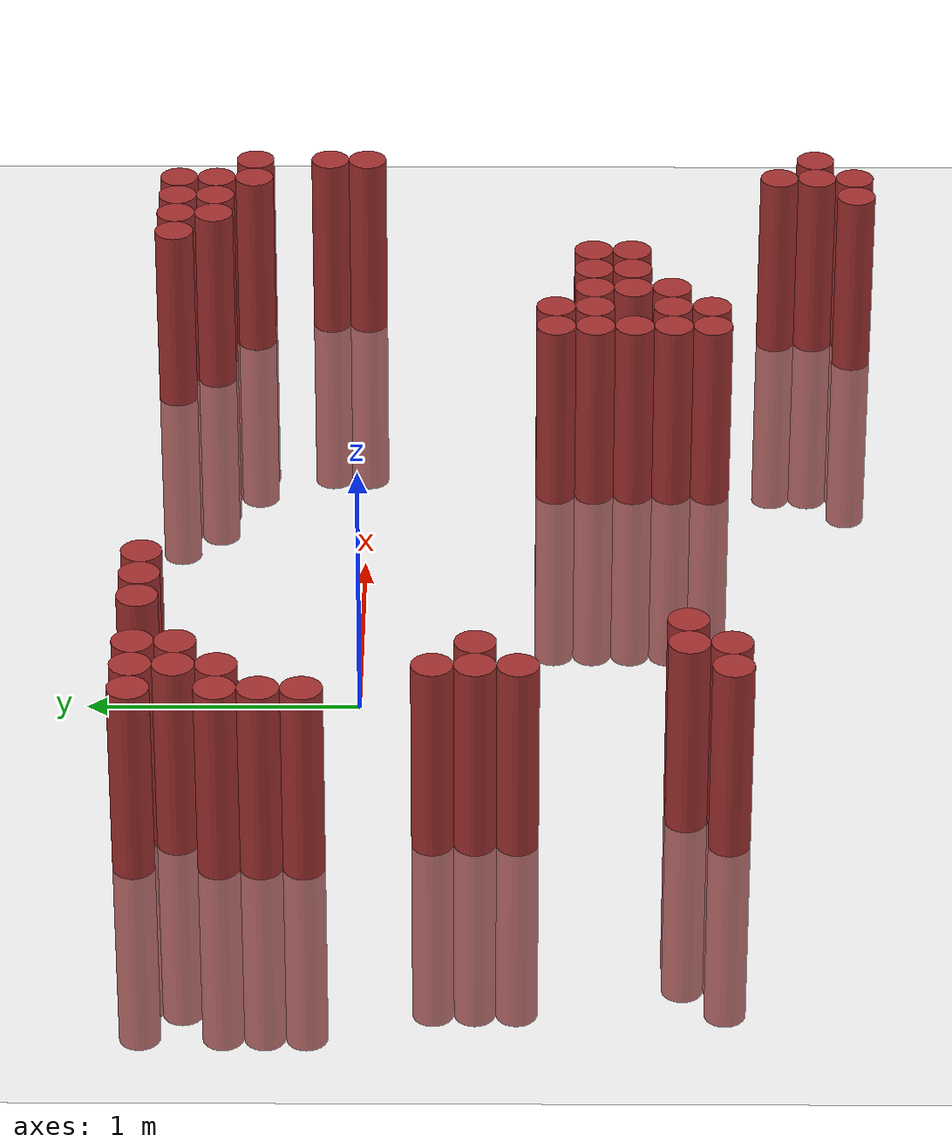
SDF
<sdf version="1.6">
 <world name="default">
  <model name="ground_plane">
   <static>1</static>
   <link name="link">
    <collision name="collision">
     <geometry><plane><normal>0 0 1</normal><size>100 100</size></plane></geometry>
     <surface><friction><ode><mu>100</mu><mu2>50</mu2></ode></friction></surface>
    </collision>
    <visual name="visual">
     <cast_shadows>0</cast_shadows>
     <geometry><plane><normal>0 0 1</normal><size>100 100</size></plane></geometry>
     <material>
      <script><uri>file://media/materials/scripts/gazebo.material</uri><name>Gazebo/Grey</name></script>
     </material>
    </visual>
   </link>
  </model>
  <model name="unit_cylinder_413">
   <static>1</static>
   <pose>-1.025000 0.175000 0.000000 0.000000 0.000000 0.000000</pose>
   <link name="link">
    <inertial>
     <mass>1</mass>
     <inertia><ixx>0.145833</ixx><ixy>0</ixy><ixz>0</ixz><iyy>0.145833</iyy><iyz>0</iyz><izz>0.125</izz></inertia>
    </inertial>
    <collision name="collision">
     <geometry><cylinder><radius>0.075000</radius><length>1.5</length></cylinder></geometry>
    </collision>
    <visual name="visual">
     <geometry><cylinder><radius>0.075000</radius><length>1.5</length></cylinder></geometry>
     <material>
      <ambient>0.648000 0.192000 0.192000 1</ambient>
      <diffuse>0.648000 0.192000 0.192000 1</diffuse>
     </material>
     <material>
      <script><name>Gazebo/Grey</name><uri>file://media/materials/scripts/gazebo.material</uri></script>
     </material>
    </visual>
   </link>
  </model>
  <model name="unit_cylinder_414">
   <static>1</static>
   <pose>-1.025000 0.325000 0.000000 0.000000 0.000000 0.000000</pose>
   <link name="link">
    <inertial>
     <mass>1</mass>
     <inertia><ixx>0.145833</ixx><ixy>0</ixy><ixz>0</ixz><iyy>0.145833</iyy><iyz>0</iyz><izz>0.125</izz></inertia>
    </inertial>
    <collision name="collision">
     <geometry><cylinder><radius>0.075000</radius><length>1.5</length></cylinder></geometry>
    </collision>
    <visual name="visual">
     <geometry><cylinder><radius>0.075000</radius><length>1.5</length></cylinder></geometry>
     <material>
      <ambient>0.648000 0.192000 0.192000 1</ambient>
      <diffuse>0.648000 0.192000 0.192000 1</diffuse>
     </material>
     <material>
      <script><name>Gazebo/Grey</name><uri>file://media/materials/scripts/gazebo.material</uri></script>
     </material>
    </visual>
   </link>
  </model>
  <model name="unit_cylinder_415">
   <static>1</static>
   <pose>-1.025000 0.475000 0.000000 0.000000 0.000000 0.000000</pose>
   <link name="link">
    <inertial>
     <mass>1</mass>
     <inertia><ixx>0.145833</ixx><ixy>0</ixy><ixz>0</ixz><iyy>0.145833</iyy><iyz>0</iyz><izz>0.125</izz></inertia>
    </inertial>
    <collision name="collision">
     <geometry><cylinder><radius>0.075000</radius><length>1.5</length></cylinder></geometry>
    </collision>
    <visual name="visual">
     <geometry><cylinder><radius>0.075000</radius><length>1.5</length></cylinder></geometry>
     <material>
      <ambient>0.648000 0.192000 0.192000 1</ambient>
      <diffuse>0.648000 0.192000 0.192000 1</diffuse>
     </material>
     <material>
      <script><name>Gazebo/Grey</name><uri>file://media/materials/scripts/gazebo.material</uri></script>
     </material>
    </visual>
   </link>
  </model>
  <model name="unit_cylinder_416">
   <static>1</static>
   <pose>-1.025000 0.775000 0.000000 0.000000 0.000000 0.000000</pose>
   <link name="link">
    <inertial>
     <mass>1</mass>
     <inertia><ixx>0.145833</ixx><ixy>0</ixy><ixz>0</ixz><iyy>0.145833</iyy><iyz>0</iyz><izz>0.125</izz></inertia>
    </inertial>
    <collision name="collision">
     <geometry><cylinder><radius>0.075000</radius><length>1.5</length></cylinder></geometry>
    </collision>
    <visual name="visual">
     <geometry><cylinder><radius>0.075000</radius><length>1.5</length></cylinder></geometry>
     <material>
      <ambient>0.648000 0.192000 0.192000 1</ambient>
      <diffuse>0.648000 0.192000 0.192000 1</diffuse>
     </material>
     <material>
      <script><name>Gazebo/Grey</name><uri>file://media/materials/scripts/gazebo.material</uri></script>
     </material>
    </visual>
   </link>
  </model>
  <model name="unit_cylinder_420">
   <static>1</static>
   <pose>-0.875000 -1.325000 0.000000 0.000000 0.000000 0.000000</pose>
   <link name="link">
    <inertial>
     <mass>1</mass>
     <inertia><ixx>0.145833</ixx><ixy>0</ixy><ixz>0</ixz><iyy>0.145833</iyy><iyz>0</iyz><izz>0.125</izz></inertia>
    </inertial>
    <collision name="collision">
     <geometry><cylinder><radius>0.075000</radius><length>1.5</length></cylinder></geometry>
    </collision>
    <visual name="visual">
     <geometry><cylinder><radius>0.075000</radius><length>1.5</length></cylinder></geometry>
     <material>
      <ambient>0.648000 0.192000 0.192000 1</ambient>
      <diffuse>0.648000 0.192000 0.192000 1</diffuse>
     </material>
     <material>
      <script><name>Gazebo/Grey</name><uri>file://media/materials/scripts/gazebo.material</uri></script>
     </material>
    </visual>
   </link>
  </model>
  <model name="unit_cylinder_421">
   <static>1</static>
   <pose>-0.875000 -0.575000 0.000000 0.000000 0.000000 0.000000</pose>
   <link name="link">
    <inertial>
     <mass>1</mass>
     <inertia><ixx>0.145833</ixx><ixy>0</ixy><ixz>0</ixz><iyy>0.145833</iyy><iyz>0</iyz><izz>0.125</izz></inertia>
    </inertial>
    <collision name="collision">
     <geometry><cylinder><radius>0.075000</radius><length>1.5</length></cylinder></geometry>
    </collision>
    <visual name="visual">
     <geometry><cylinder><radius>0.075000</radius><length>1.5</length></cylinder></geometry>
     <material>
      <ambient>0.648000 0.192000 0.192000 1</ambient>
      <diffuse>0.648000 0.192000 0.192000 1</diffuse>
     </material>
     <material>
      <script><name>Gazebo/Grey</name><uri>file://media/materials/scripts/gazebo.material</uri></script>
     </material>
    </visual>
   </link>
  </model>
  <model name="unit_cylinder_422">
   <static>1</static>
   <pose>-0.875000 -0.425000 0.000000 0.000000 0.000000 0.000000</pose>
   <link name="link">
    <inertial>
     <mass>1</mass>
     <inertia><ixx>0.145833</ixx><ixy>0</ixy><ixz>0</ixz><iyy>0.145833</iyy><iyz>0</iyz><izz>0.125</izz></inertia>
    </inertial>
    <collision name="collision">
     <geometry><cylinder><radius>0.075000</radius><length>1.5</length></cylinder></geometry>
    </collision>
    <visual name="visual">
     <geometry><cylinder><radius>0.075000</radius><length>1.5</length></cylinder></geometry>
     <material>
      <ambient>0.648000 0.192000 0.192000 1</ambient>
      <diffuse>0.648000 0.192000 0.192000 1</diffuse>
     </material>
     <material>
      <script><name>Gazebo/Grey</name><uri>file://media/materials/scripts/gazebo.material</uri></script>
     </material>
    </visual>
   </link>
  </model>
  <model name="unit_cylinder_423">
   <static>1</static>
   <pose>-0.875000 -0.275000 0.000000 0.000000 0.000000 0.000000</pose>
   <link name="link">
    <inertial>
     <mass>1</mass>
     <inertia><ixx>0.145833</ixx><ixy>0</ixy><ixz>0</ixz><iyy>0.145833</iyy><iyz>0</iyz><izz>0.125</izz></inertia>
    </inertial>
    <collision name="collision">
     <geometry><cylinder><radius>0.075000</radius><length>1.5</length></cylinder></geometry>
    </collision>
    <visual name="visual">
     <geometry><cylinder><radius>0.075000</radius><length>1.5</length></cylinder></geometry>
     <material>
      <ambient>0.648000 0.192000 0.192000 1</ambient>
      <diffuse>0.648000 0.192000 0.192000 1</diffuse>
     </material>
     <material>
      <script><name>Gazebo/Grey</name><uri>file://media/materials/scripts/gazebo.material</uri></script>
     </material>
    </visual>
   </link>
  </model>
  <model name="unit_cylinder_424">
   <static>1</static>
   <pose>-0.875000 0.475000 0.000000 0.000000 0.000000 0.000000</pose>
   <link name="link">
    <inertial>
     <mass>1</mass>
     <inertia><ixx>0.145833</ixx><ixy>0</ixy><ixz>0</ixz><iyy>0.145833</iyy><iyz>0</iyz><izz>0.125</izz></inertia>
    </inertial>
    <collision name="collision">
     <geometry><cylinder><radius>0.075000</radius><length>1.5</length></cylinder></geometry>
    </collision>
    <visual name="visual">
     <geometry><cylinder><radius>0.075000</radius><length>1.5</length></cylinder></geometry>
     <material>
      <ambient>0.648000 0.192000 0.192000 1</ambient>
      <diffuse>0.648000 0.192000 0.192000 1</diffuse>
     </material>
     <material>
      <script><name>Gazebo/Grey</name><uri>file://media/materials/scripts/gazebo.material</uri></script>
     </material>
    </visual>
   </link>
  </model>
  <model name="unit_cylinder_425">
   <static>1</static>
   <pose>-0.875000 0.625000 0.000000 0.000000 0.000000 0.000000</pose>
   <link name="link">
    <inertial>
     <mass>1</mass>
     <inertia><ixx>0.145833</ixx><ixy>0</ixy><ixz>0</ixz><iyy>0.145833</iyy><iyz>0</iyz><izz>0.125</izz></inertia>
    </inertial>
    <collision name="collision">
     <geometry><cylinder><radius>0.075000</radius><length>1.5</length></cylinder></geometry>
    </collision>
    <visual name="visual">
     <geometry><cylinder><radius>0.075000</radius><length>1.5</length></cylinder></geometry>
     <material>
      <ambient>0.648000 0.192000 0.192000 1</ambient>
      <diffuse>0.648000 0.192000 0.192000 1</diffuse>
     </material>
     <material>
      <script><name>Gazebo/Grey</name><uri>file://media/materials/scripts/gazebo.material</uri></script>
     </material>
    </visual>
   </link>
  </model>
  <model name="unit_cylinder_426">
   <static>1</static>
   <pose>-0.875000 0.775000 0.000000 0.000000 0.000000 0.000000</pose>
   <link name="link">
    <inertial>
     <mass>1</mass>
     <inertia><ixx>0.145833</ixx><ixy>0</ixy><ixz>0</ixz><iyy>0.145833</iyy><iyz>0</iyz><izz>0.125</izz></inertia>
    </inertial>
    <collision name="collision">
     <geometry><cylinder><radius>0.075000</radius><length>1.5</length></cylinder></geometry>
    </collision>
    <visual name="visual">
     <geometry><cylinder><radius>0.075000</radius><length>1.5</length></cylinder></geometry>
     <material>
      <ambient>0.648000 0.192000 0.192000 1</ambient>
      <diffuse>0.648000 0.192000 0.192000 1</diffuse>
     </material>
     <material>
      <script><name>Gazebo/Grey</name><uri>file://media/materials/scripts/gazebo.material</uri></script>
     </material>
    </visual>
   </link>
  </model>
  <model name="unit_cylinder_428">
   <static>1</static>
   <pose>-0.725000 -1.325000 0.000000 0.000000 0.000000 0.000000</pose>
   <link name="link">
    <inertial>
     <mass>1</mass>
     <inertia><ixx>0.145833</ixx><ixy>0</ixy><ixz>0</ixz><iyy>0.145833</iyy><iyz>0</iyz><izz>0.125</izz></inertia>
    </inertial>
    <collision name="collision">
     <geometry><cylinder><radius>0.075000</radius><length>1.5</length></cylinder></geometry>
    </collision>
    <visual name="visual">
     <geometry><cylinder><radius>0.075000</radius><length>1.5</length></cylinder></geometry>
     <material>
      <ambient>0.648000 0.192000 0.192000 1</ambient>
      <diffuse>0.648000 0.192000 0.192000 1</diffuse>
     </material>
     <material>
      <script><name>Gazebo/Grey</name><uri>file://media/materials/scripts/gazebo.material</uri></script>
     </material>
    </visual>
   </link>
  </model>
  <model name="unit_cylinder_429">
   <static>1</static>
   <pose>-0.725000 -1.175000 0.000000 0.000000 0.000000 0.000000</pose>
   <link name="link">
    <inertial>
     <mass>1</mass>
     <inertia><ixx>0.145833</ixx><ixy>0</ixy><ixz>0</ixz><iyy>0.145833</iyy><iyz>0</iyz><izz>0.125</izz></inertia>
    </inertial>
    <collision name="collision">
     <geometry><cylinder><radius>0.075000</radius><length>1.5</length></cylinder></geometry>
    </collision>
    <visual name="visual">
     <geometry><cylinder><radius>0.075000</radius><length>1.5</length></cylinder></geometry>
     <material>
      <ambient>0.648000 0.192000 0.192000 1</ambient>
      <diffuse>0.648000 0.192000 0.192000 1</diffuse>
     </material>
     <material>
      <script><name>Gazebo/Grey</name><uri>file://media/materials/scripts/gazebo.material</uri></script>
     </material>
    </visual>
   </link>
  </model>
  <model name="unit_cylinder_430">
   <static>1</static>
   <pose>-0.725000 -0.425000 0.000000 0.000000 0.000000 0.000000</pose>
   <link name="link">
    <inertial>
     <mass>1</mass>
     <inertia><ixx>0.145833</ixx><ixy>0</ixy><ixz>0</ixz><iyy>0.145833</iyy><iyz>0</iyz><izz>0.125</izz></inertia>
    </inertial>
    <collision name="collision">
     <geometry><cylinder><radius>0.075000</radius><length>1.5</length></cylinder></geometry>
    </collision>
    <visual name="visual">
     <geometry><cylinder><radius>0.075000</radius><length>1.5</length></cylinder></geometry>
     <material>
      <ambient>0.648000 0.192000 0.192000 1</ambient>
      <diffuse>0.648000 0.192000 0.192000 1</diffuse>
     </material>
     <material>
      <script><name>Gazebo/Grey</name><uri>file://media/materials/scripts/gazebo.material</uri></script>
     </material>
    </visual>
   </link>
  </model>
  <model name="unit_cylinder_431">
   <static>1</static>
   <pose>-0.725000 0.625000 0.000000 0.000000 0.000000 0.000000</pose>
   <link name="link">
    <inertial>
     <mass>1</mass>
     <inertia><ixx>0.145833</ixx><ixy>0</ixy><ixz>0</ixz><iyy>0.145833</iyy><iyz>0</iyz><izz>0.125</izz></inertia>
    </inertial>
    <collision name="collision">
     <geometry><cylinder><radius>0.075000</radius><length>1.5</length></cylinder></geometry>
    </collision>
    <visual name="visual">
     <geometry><cylinder><radius>0.075000</radius><length>1.5</length></cylinder></geometry>
     <material>
      <ambient>0.648000 0.192000 0.192000 1</ambient>
      <diffuse>0.648000 0.192000 0.192000 1</diffuse>
     </material>
     <material>
      <script><name>Gazebo/Grey</name><uri>file://media/materials/scripts/gazebo.material</uri></script>
     </material>
    </visual>
   </link>
  </model>
  <model name="unit_cylinder_432">
   <static>1</static>
   <pose>-0.725000 0.775000 0.000000 0.000000 0.000000 0.000000</pose>
   <link name="link">
    <inertial>
     <mass>1</mass>
     <inertia><ixx>0.145833</ixx><ixy>0</ixy><ixz>0</ixz><iyy>0.145833</iyy><iyz>0</iyz><izz>0.125</izz></inertia>
    </inertial>
    <collision name="collision">
     <geometry><cylinder><radius>0.075000</radius><length>1.5</length></cylinder></geometry>
    </collision>
    <visual name="visual">
     <geometry><cylinder><radius>0.075000</radius><length>1.5</length></cylinder></geometry>
     <material>
      <ambient>0.648000 0.192000 0.192000 1</ambient>
      <diffuse>0.648000 0.192000 0.192000 1</diffuse>
     </material>
     <material>
      <script><name>Gazebo/Grey</name><uri>file://media/materials/scripts/gazebo.material</uri></script>
     </material>
    </visual>
   </link>
  </model>
  <model name="unit_cylinder_437">
   <static>1</static>
   <pose>-0.575000 -1.175000 0.000000 0.000000 0.000000 0.000000</pose>
   <link name="link">
    <inertial>
     <mass>1</mass>
     <inertia><ixx>0.145833</ixx><ixy>0</ixy><ixz>0</ixz><iyy>0.145833</iyy><iyz>0</iyz><izz>0.125</izz></inertia>
    </inertial>
    <collision name="collision">
     <geometry><cylinder><radius>0.075000</radius><length>1.5</length></cylinder></geometry>
    </collision>
    <visual name="visual">
     <geometry><cylinder><radius>0.075000</radius><length>1.5</length></cylinder></geometry>
     <material>
      <ambient>0.648000 0.192000 0.192000 1</ambient>
      <diffuse>0.648000 0.192000 0.192000 1</diffuse>
     </material>
     <material>
      <script><name>Gazebo/Grey</name><uri>file://media/materials/scripts/gazebo.material</uri></script>
     </material>
    </visual>
   </link>
  </model>
  <model name="unit_cylinder_445">
   <static>1</static>
   <pose>-0.425000 0.775000 0.000000 0.000000 0.000000 0.000000</pose>
   <link name="link">
    <inertial>
     <mass>1</mass>
     <inertia><ixx>0.145833</ixx><ixy>0</ixy><ixz>0</ixz><iyy>0.145833</iyy><iyz>0</iyz><izz>0.125</izz></inertia>
    </inertial>
    <collision name="collision">
     <geometry><cylinder><radius>0.075000</radius><length>1.5</length></cylinder></geometry>
    </collision>
    <visual name="visual">
     <geometry><cylinder><radius>0.075000</radius><length>1.5</length></cylinder></geometry>
     <material>
      <ambient>0.648000 0.192000 0.192000 1</ambient>
      <diffuse>0.648000 0.192000 0.192000 1</diffuse>
     </material>
     <material>
      <script><name>Gazebo/Grey</name><uri>file://media/materials/scripts/gazebo.material</uri></script>
     </material>
    </visual>
   </link>
  </model>
  <model name="unit_cylinder_452">
   <static>1</static>
   <pose>-0.275000 0.775000 0.000000 0.000000 0.000000 0.000000</pose>
   <link name="link">
    <inertial>
     <mass>1</mass>
     <inertia><ixx>0.145833</ixx><ixy>0</ixy><ixz>0</ixz><iyy>0.145833</iyy><iyz>0</iyz><izz>0.125</izz></inertia>
    </inertial>
    <collision name="collision">
     <geometry><cylinder><radius>0.075000</radius><length>1.5</length></cylinder></geometry>
    </collision>
    <visual name="visual">
     <geometry><cylinder><radius>0.075000</radius><length>1.5</length></cylinder></geometry>
     <material>
      <ambient>0.648000 0.192000 0.192000 1</ambient>
      <diffuse>0.648000 0.192000 0.192000 1</diffuse>
     </material>
     <material>
      <script><name>Gazebo/Grey</name><uri>file://media/materials/scripts/gazebo.material</uri></script>
     </material>
    </visual>
   </link>
  </model>
  <model name="unit_cylinder_454">
   <static>1</static>
   <pose>-0.125000 0.775000 0.000000 0.000000 0.000000 0.000000</pose>
   <link name="link">
    <inertial>
     <mass>1</mass>
     <inertia><ixx>0.145833</ixx><ixy>0</ixy><ixz>0</ixz><iyy>0.145833</iyy><iyz>0</iyz><izz>0.125</izz></inertia>
    </inertial>
    <collision name="collision">
     <geometry><cylinder><radius>0.075000</radius><length>1.5</length></cylinder></geometry>
    </collision>
    <visual name="visual">
     <geometry><cylinder><radius>0.075000</radius><length>1.5</length></cylinder></geometry>
     <material>
      <ambient>0.648000 0.192000 0.192000 1</ambient>
      <diffuse>0.648000 0.192000 0.192000 1</diffuse>
     </material>
     <material>
      <script><name>Gazebo/Grey</name><uri>file://media/materials/scripts/gazebo.material</uri></script>
     </material>
    </visual>
   </link>
  </model>
  <model name="unit_cylinder_483">
   <static>1</static>
   <pose>1.525000 -1.325000 0.000000 0.000000 0.000000 0.000000</pose>
   <link name="link">
    <inertial>
     <mass>1</mass>
     <inertia><ixx>0.145833</ixx><ixy>0</ixy><ixz>0</ixz><iyy>0.145833</iyy><iyz>0</iyz><izz>0.125</izz></inertia>
    </inertial>
    <collision name="collision">
     <geometry><cylinder><radius>0.075000</radius><length>1.5</length></cylinder></geometry>
    </collision>
    <visual name="visual">
     <geometry><cylinder><radius>0.075000</radius><length>1.5</length></cylinder></geometry>
     <material>
      <ambient>0.648000 0.192000 0.192000 1</ambient>
      <diffuse>0.648000 0.192000 0.192000 1</diffuse>
     </material>
     <material>
      <script><name>Gazebo/Grey</name><uri>file://media/materials/scripts/gazebo.material</uri></script>
     </material>
    </visual>
   </link>
  </model>
  <model name="unit_cylinder_484">
   <static>1</static>
   <pose>1.525000 -1.175000 0.000000 0.000000 0.000000 0.000000</pose>
   <link name="link">
    <inertial>
     <mass>1</mass>
     <inertia><ixx>0.145833</ixx><ixy>0</ixy><ixz>0</ixz><iyy>0.145833</iyy><iyz>0</iyz><izz>0.125</izz></inertia>
    </inertial>
    <collision name="collision">
     <geometry><cylinder><radius>0.075000</radius><length>1.5</length></cylinder></geometry>
    </collision>
    <visual name="visual">
     <geometry><cylinder><radius>0.075000</radius><length>1.5</length></cylinder></geometry>
     <material>
      <ambient>0.648000 0.192000 0.192000 1</ambient>
      <diffuse>0.648000 0.192000 0.192000 1</diffuse>
     </material>
     <material>
      <script><name>Gazebo/Grey</name><uri>file://media/materials/scripts/gazebo.material</uri></script>
     </material>
    </visual>
   </link>
  </model>
  <model name="unit_cylinder_485">
   <static>1</static>
   <pose>1.525000 -1.025000 0.000000 0.000000 0.000000 0.000000</pose>
   <link name="link">
    <inertial>
     <mass>1</mass>
     <inertia><ixx>0.145833</ixx><ixy>0</ixy><ixz>0</ixz><iyy>0.145833</iyy><iyz>0</iyz><izz>0.125</izz></inertia>
    </inertial>
    <collision name="collision">
     <geometry><cylinder><radius>0.075000</radius><length>1.5</length></cylinder></geometry>
    </collision>
    <visual name="visual">
     <geometry><cylinder><radius>0.075000</radius><length>1.5</length></cylinder></geometry>
     <material>
      <ambient>0.648000 0.192000 0.192000 1</ambient>
      <diffuse>0.648000 0.192000 0.192000 1</diffuse>
     </material>
     <material>
      <script><name>Gazebo/Grey</name><uri>file://media/materials/scripts/gazebo.material</uri></script>
     </material>
    </visual>
   </link>
  </model>
  <model name="unit_cylinder_486">
   <static>1</static>
   <pose>1.525000 -0.875000 0.000000 0.000000 0.000000 0.000000</pose>
   <link name="link">
    <inertial>
     <mass>1</mass>
     <inertia><ixx>0.145833</ixx><ixy>0</ixy><ixz>0</ixz><iyy>0.145833</iyy><iyz>0</iyz><izz>0.125</izz></inertia>
    </inertial>
    <collision name="collision">
     <geometry><cylinder><radius>0.075000</radius><length>1.5</length></cylinder></geometry>
    </collision>
    <visual name="visual">
     <geometry><cylinder><radius>0.075000</radius><length>1.5</length></cylinder></geometry>
     <material>
      <ambient>0.648000 0.192000 0.192000 1</ambient>
      <diffuse>0.648000 0.192000 0.192000 1</diffuse>
     </material>
     <material>
      <script><name>Gazebo/Grey</name><uri>file://media/materials/scripts/gazebo.material</uri></script>
     </material>
    </visual>
   </link>
  </model>
  <model name="unit_cylinder_487">
   <static>1</static>
   <pose>1.525000 -0.725000 0.000000 0.000000 0.000000 0.000000</pose>
   <link name="link">
    <inertial>
     <mass>1</mass>
     <inertia><ixx>0.145833</ixx><ixy>0</ixy><ixz>0</ixz><iyy>0.145833</iyy><iyz>0</iyz><izz>0.125</izz></inertia>
    </inertial>
    <collision name="collision">
     <geometry><cylinder><radius>0.075000</radius><length>1.5</length></cylinder></geometry>
    </collision>
    <visual name="visual">
     <geometry><cylinder><radius>0.075000</radius><length>1.5</length></cylinder></geometry>
     <material>
      <ambient>0.648000 0.192000 0.192000 1</ambient>
      <diffuse>0.648000 0.192000 0.192000 1</diffuse>
     </material>
     <material>
      <script><name>Gazebo/Grey</name><uri>file://media/materials/scripts/gazebo.material</uri></script>
     </material>
    </visual>
   </link>
  </model>
  <model name="unit_cylinder_488">
   <static>1</static>
   <pose>1.675000 -1.325000 0.000000 0.000000 0.000000 0.000000</pose>
   <link name="link">
    <inertial>
     <mass>1</mass>
     <inertia><ixx>0.145833</ixx><ixy>0</ixy><ixz>0</ixz><iyy>0.145833</iyy><iyz>0</iyz><izz>0.125</izz></inertia>
    </inertial>
    <collision name="collision">
     <geometry><cylinder><radius>0.075000</radius><length>1.5</length></cylinder></geometry>
    </collision>
    <visual name="visual">
     <geometry><cylinder><radius>0.075000</radius><length>1.5</length></cylinder></geometry>
     <material>
      <ambient>0.648000 0.192000 0.192000 1</ambient>
      <diffuse>0.648000 0.192000 0.192000 1</diffuse>
     </material>
     <material>
      <script><name>Gazebo/Grey</name><uri>file://media/materials/scripts/gazebo.material</uri></script>
     </material>
    </visual>
   </link>
  </model>
  <model name="unit_cylinder_489">
   <static>1</static>
   <pose>1.675000 -1.175000 0.000000 0.000000 0.000000 0.000000</pose>
   <link name="link">
    <inertial>
     <mass>1</mass>
     <inertia><ixx>0.145833</ixx><ixy>0</ixy><ixz>0</ixz><iyy>0.145833</iyy><iyz>0</iyz><izz>0.125</izz></inertia>
    </inertial>
    <collision name="collision">
     <geometry><cylinder><radius>0.075000</radius><length>1.5</length></cylinder></geometry>
    </collision>
    <visual name="visual">
     <geometry><cylinder><radius>0.075000</radius><length>1.5</length></cylinder></geometry>
     <material>
      <ambient>0.648000 0.192000 0.192000 1</ambient>
      <diffuse>0.648000 0.192000 0.192000 1</diffuse>
     </material>
     <material>
      <script><name>Gazebo/Grey</name><uri>file://media/materials/scripts/gazebo.material</uri></script>
     </material>
    </visual>
   </link>
  </model>
  <model name="unit_cylinder_490">
   <static>1</static>
   <pose>1.675000 -0.875000 0.000000 0.000000 0.000000 0.000000</pose>
   <link name="link">
    <inertial>
     <mass>1</mass>
     <inertia><ixx>0.145833</ixx><ixy>0</ixy><ixz>0</ixz><iyy>0.145833</iyy><iyz>0</iyz><izz>0.125</izz></inertia>
    </inertial>
    <collision name="collision">
     <geometry><cylinder><radius>0.075000</radius><length>1.5</length></cylinder></geometry>
    </collision>
    <visual name="visual">
     <geometry><cylinder><radius>0.075000</radius><length>1.5</length></cylinder></geometry>
     <material>
      <ambient>0.648000 0.192000 0.192000 1</ambient>
      <diffuse>0.648000 0.192000 0.192000 1</diffuse>
     </material>
     <material>
      <script><name>Gazebo/Grey</name><uri>file://media/materials/scripts/gazebo.material</uri></script>
     </material>
    </visual>
   </link>
  </model>
  <model name="unit_cylinder_491">
   <static>1</static>
   <pose>1.675000 -0.725000 0.000000 0.000000 0.000000 0.000000</pose>
   <link name="link">
    <inertial>
     <mass>1</mass>
     <inertia><ixx>0.145833</ixx><ixy>0</ixy><ixz>0</ixz><iyy>0.145833</iyy><iyz>0</iyz><izz>0.125</izz></inertia>
    </inertial>
    <collision name="collision">
     <geometry><cylinder><radius>0.075000</radius><length>1.5</length></cylinder></geometry>
    </collision>
    <visual name="visual">
     <geometry><cylinder><radius>0.075000</radius><length>1.5</length></cylinder></geometry>
     <material>
      <ambient>0.648000 0.192000 0.192000 1</ambient>
      <diffuse>0.648000 0.192000 0.192000 1</diffuse>
     </material>
     <material>
      <script><name>Gazebo/Grey</name><uri>file://media/materials/scripts/gazebo.material</uri></script>
     </material>
    </visual>
   </link>
  </model>
  <model name="unit_cylinder_492">
   <static>1</static>
   <pose>1.825000 -1.175000 0.000000 0.000000 0.000000 0.000000</pose>
   <link name="link">
    <inertial>
     <mass>1</mass>
     <inertia><ixx>0.145833</ixx><ixy>0</ixy><ixz>0</ixz><iyy>0.145833</iyy><iyz>0</iyz><izz>0.125</izz></inertia>
    </inertial>
    <collision name="collision">
     <geometry><cylinder><radius>0.075000</radius><length>1.5</length></cylinder></geometry>
    </collision>
    <visual name="visual">
     <geometry><cylinder><radius>0.075000</radius><length>1.5</length></cylinder></geometry>
     <material>
      <ambient>0.648000 0.192000 0.192000 1</ambient>
      <diffuse>0.648000 0.192000 0.192000 1</diffuse>
     </material>
     <material>
      <script><name>Gazebo/Grey</name><uri>file://media/materials/scripts/gazebo.material</uri></script>
     </material>
    </visual>
   </link>
  </model>
  <model name="unit_cylinder_493">
   <static>1</static>
   <pose>1.825000 -1.025000 0.000000 0.000000 0.000000 0.000000</pose>
   <link name="link">
    <inertial>
     <mass>1</mass>
     <inertia><ixx>0.145833</ixx><ixy>0</ixy><ixz>0</ixz><iyy>0.145833</iyy><iyz>0</iyz><izz>0.125</izz></inertia>
    </inertial>
    <collision name="collision">
     <geometry><cylinder><radius>0.075000</radius><length>1.5</length></cylinder></geometry>
    </collision>
    <visual name="visual">
     <geometry><cylinder><radius>0.075000</radius><length>1.5</length></cylinder></geometry>
     <material>
      <ambient>0.648000 0.192000 0.192000 1</ambient>
      <diffuse>0.648000 0.192000 0.192000 1</diffuse>
     </material>
     <material>
      <script><name>Gazebo/Grey</name><uri>file://media/materials/scripts/gazebo.material</uri></script>
     </material>
    </visual>
   </link>
  </model>
  <model name="unit_cylinder_494">
   <static>1</static>
   <pose>1.825000 -0.875000 0.000000 0.000000 0.000000 0.000000</pose>
   <link name="link">
    <inertial>
     <mass>1</mass>
     <inertia><ixx>0.145833</ixx><ixy>0</ixy><ixz>0</ixz><iyy>0.145833</iyy><iyz>0</iyz><izz>0.125</izz></inertia>
    </inertial>
    <collision name="collision">
     <geometry><cylinder><radius>0.075000</radius><length>1.5</length></cylinder></geometry>
    </collision>
    <visual name="visual">
     <geometry><cylinder><radius>0.075000</radius><length>1.5</length></cylinder></geometry>
     <material>
      <ambient>0.648000 0.192000 0.192000 1</ambient>
      <diffuse>0.648000 0.192000 0.192000 1</diffuse>
     </material>
     <material>
      <script><name>Gazebo/Grey</name><uri>file://media/materials/scripts/gazebo.material</uri></script>
     </material>
    </visual>
   </link>
  </model>
  <model name="unit_cylinder_496">
   <static>1</static>
   <pose>1.975000 -1.025000 0.000000 0.000000 0.000000 0.000000</pose>
   <link name="link">
    <inertial>
     <mass>1</mass>
     <inertia><ixx>0.145833</ixx><ixy>0</ixy><ixz>0</ixz><iyy>0.145833</iyy><iyz>0</iyz><izz>0.125</izz></inertia>
    </inertial>
    <collision name="collision">
     <geometry><cylinder><radius>0.075000</radius><length>1.5</length></cylinder></geometry>
    </collision>
    <visual name="visual">
     <geometry><cylinder><radius>0.075000</radius><length>1.5</length></cylinder></geometry>
     <material>
      <ambient>0.648000 0.192000 0.192000 1</ambient>
      <diffuse>0.648000 0.192000 0.192000 1</diffuse>
     </material>
     <material>
      <script><name>Gazebo/Grey</name><uri>file://media/materials/scripts/gazebo.material</uri></script>
     </material>
    </visual>
   </link>
  </model>
  <model name="unit_cylinder_497">
   <static>1</static>
   <pose>1.975000 -0.875000 0.000000 0.000000 0.000000 0.000000</pose>
   <link name="link">
    <inertial>
     <mass>1</mass>
     <inertia><ixx>0.145833</ixx><ixy>0</ixy><ixz>0</ixz><iyy>0.145833</iyy><iyz>0</iyz><izz>0.125</izz></inertia>
    </inertial>
    <collision name="collision">
     <geometry><cylinder><radius>0.075000</radius><length>1.5</length></cylinder></geometry>
    </collision>
    <visual name="visual">
     <geometry><cylinder><radius>0.075000</radius><length>1.5</length></cylinder></geometry>
     <material>
      <ambient>0.648000 0.192000 0.192000 1</ambient>
      <diffuse>0.648000 0.192000 0.192000 1</diffuse>
     </material>
     <material>
      <script><name>Gazebo/Grey</name><uri>file://media/materials/scripts/gazebo.material</uri></script>
     </material>
    </visual>
   </link>
  </model>
  <model name="unit_cylinder_500">
   <static>1</static>
   <pose>2.125000 -1.025000 0.000000 0.000000 0.000000 0.000000</pose>
   <link name="link">
    <inertial>
     <mass>1</mass>
     <inertia><ixx>0.145833</ixx><ixy>0</ixy><ixz>0</ixz><iyy>0.145833</iyy><iyz>0</iyz><izz>0.125</izz></inertia>
    </inertial>
    <collision name="collision">
     <geometry><cylinder><radius>0.075000</radius><length>1.5</length></cylinder></geometry>
    </collision>
    <visual name="visual">
     <geometry><cylinder><radius>0.075000</radius><length>1.5</length></cylinder></geometry>
     <material>
      <ambient>0.648000 0.192000 0.192000 1</ambient>
      <diffuse>0.648000 0.192000 0.192000 1</diffuse>
     </material>
     <material>
      <script><name>Gazebo/Grey</name><uri>file://media/materials/scripts/gazebo.material</uri></script>
     </material>
    </visual>
   </link>
  </model>
  <model name="unit_cylinder_501">
   <static>1</static>
   <pose>2.125000 -0.875000 0.000000 0.000000 0.000000 0.000000</pose>
   <link name="link">
    <inertial>
     <mass>1</mass>
     <inertia><ixx>0.145833</ixx><ixy>0</ixy><ixz>0</ixz><iyy>0.145833</iyy><iyz>0</iyz><izz>0.125</izz></inertia>
    </inertial>
    <collision name="collision">
     <geometry><cylinder><radius>0.075000</radius><length>1.5</length></cylinder></geometry>
    </collision>
    <visual name="visual">
     <geometry><cylinder><radius>0.075000</radius><length>1.5</length></cylinder></geometry>
     <material>
      <ambient>0.648000 0.192000 0.192000 1</ambient>
      <diffuse>0.648000 0.192000 0.192000 1</diffuse>
     </material>
     <material>
      <script><name>Gazebo/Grey</name><uri>file://media/materials/scripts/gazebo.material</uri></script>
     </material>
    </visual>
   </link>
  </model>
  <model name="unit_cylinder_504">
   <static>1</static>
   <pose>2.275000 0.775000 0.000000 0.000000 0.000000 0.000000</pose>
   <link name="link">
    <inertial>
     <mass>1</mass>
     <inertia><ixx>0.145833</ixx><ixy>0</ixy><ixz>0</ixz><iyy>0.145833</iyy><iyz>0</iyz><izz>0.125</izz></inertia>
    </inertial>
    <collision name="collision">
     <geometry><cylinder><radius>0.075000</radius><length>1.5</length></cylinder></geometry>
    </collision>
    <visual name="visual">
     <geometry><cylinder><radius>0.075000</radius><length>1.5</length></cylinder></geometry>
     <material>
      <ambient>0.648000 0.192000 0.192000 1</ambient>
      <diffuse>0.648000 0.192000 0.192000 1</diffuse>
     </material>
     <material>
      <script><name>Gazebo/Grey</name><uri>file://media/materials/scripts/gazebo.material</uri></script>
     </material>
    </visual>
   </link>
  </model>
  <model name="unit_cylinder_507">
   <static>1</static>
   <pose>2.425000 0.625000 0.000000 0.000000 0.000000 0.000000</pose>
   <link name="link">
    <inertial>
     <mass>1</mass>
     <inertia><ixx>0.145833</ixx><ixy>0</ixy><ixz>0</ixz><iyy>0.145833</iyy><iyz>0</iyz><izz>0.125</izz></inertia>
    </inertial>
    <collision name="collision">
     <geometry><cylinder><radius>0.075000</radius><length>1.5</length></cylinder></geometry>
    </collision>
    <visual name="visual">
     <geometry><cylinder><radius>0.075000</radius><length>1.5</length></cylinder></geometry>
     <material>
      <ambient>0.648000 0.192000 0.192000 1</ambient>
      <diffuse>0.648000 0.192000 0.192000 1</diffuse>
     </material>
     <material>
      <script><name>Gazebo/Grey</name><uri>file://media/materials/scripts/gazebo.material</uri></script>
     </material>
    </visual>
   </link>
  </model>
  <model name="unit_cylinder_508">
   <static>1</static>
   <pose>2.425000 0.775000 0.000000 0.000000 0.000000 0.000000</pose>
   <link name="link">
    <inertial>
     <mass>1</mass>
     <inertia><ixx>0.145833</ixx><ixy>0</ixy><ixz>0</ixz><iyy>0.145833</iyy><iyz>0</iyz><izz>0.125</izz></inertia>
    </inertial>
    <collision name="collision">
     <geometry><cylinder><radius>0.075000</radius><length>1.5</length></cylinder></geometry>
    </collision>
    <visual name="visual">
     <geometry><cylinder><radius>0.075000</radius><length>1.5</length></cylinder></geometry>
     <material>
      <ambient>0.648000 0.192000 0.192000 1</ambient>
      <diffuse>0.648000 0.192000 0.192000 1</diffuse>
     </material>
     <material>
      <script><name>Gazebo/Grey</name><uri>file://media/materials/scripts/gazebo.material</uri></script>
     </material>
    </visual>
   </link>
  </model>
  <model name="unit_cylinder_512">
   <static>1</static>
   <pose>2.575000 -1.925000 0.000000 0.000000 0.000000 0.000000</pose>
   <link name="link">
    <inertial>
     <mass>1</mass>
     <inertia><ixx>0.145833</ixx><ixy>0</ixy><ixz>0</ixz><iyy>0.145833</iyy><iyz>0</iyz><izz>0.125</izz></inertia>
    </inertial>
    <collision name="collision">
     <geometry><cylinder><radius>0.075000</radius><length>1.5</length></cylinder></geometry>
    </collision>
    <visual name="visual">
     <geometry><cylinder><radius>0.075000</radius><length>1.5</length></cylinder></geometry>
     <material>
      <ambient>0.648000 0.192000 0.192000 1</ambient>
      <diffuse>0.648000 0.192000 0.192000 1</diffuse>
     </material>
     <material>
      <script><name>Gazebo/Grey</name><uri>file://media/materials/scripts/gazebo.material</uri></script>
     </material>
    </visual>
   </link>
  </model>
  <model name="unit_cylinder_513">
   <static>1</static>
   <pose>2.575000 0.625000 0.000000 0.000000 0.000000 0.000000</pose>
   <link name="link">
    <inertial>
     <mass>1</mass>
     <inertia><ixx>0.145833</ixx><ixy>0</ixy><ixz>0</ixz><iyy>0.145833</iyy><iyz>0</iyz><izz>0.125</izz></inertia>
    </inertial>
    <collision name="collision">
     <geometry><cylinder><radius>0.075000</radius><length>1.5</length></cylinder></geometry>
    </collision>
    <visual name="visual">
     <geometry><cylinder><radius>0.075000</radius><length>1.5</length></cylinder></geometry>
     <material>
      <ambient>0.648000 0.192000 0.192000 1</ambient>
      <diffuse>0.648000 0.192000 0.192000 1</diffuse>
     </material>
     <material>
      <script><name>Gazebo/Grey</name><uri>file://media/materials/scripts/gazebo.material</uri></script>
     </material>
    </visual>
   </link>
  </model>
  <model name="unit_cylinder_514">
   <static>1</static>
   <pose>2.575000 0.775000 0.000000 0.000000 0.000000 0.000000</pose>
   <link name="link">
    <inertial>
     <mass>1</mass>
     <inertia><ixx>0.145833</ixx><ixy>0</ixy><ixz>0</ixz><iyy>0.145833</iyy><iyz>0</iyz><izz>0.125</izz></inertia>
    </inertial>
    <collision name="collision">
     <geometry><cylinder><radius>0.075000</radius><length>1.5</length></cylinder></geometry>
    </collision>
    <visual name="visual">
     <geometry><cylinder><radius>0.075000</radius><length>1.5</length></cylinder></geometry>
     <material>
      <ambient>0.648000 0.192000 0.192000 1</ambient>
      <diffuse>0.648000 0.192000 0.192000 1</diffuse>
     </material>
     <material>
      <script><name>Gazebo/Grey</name><uri>file://media/materials/scripts/gazebo.material</uri></script>
     </material>
    </visual>
   </link>
  </model>
  <model name="unit_cylinder_520">
   <static>1</static>
   <pose>2.725000 -1.925000 0.000000 0.000000 0.000000 0.000000</pose>
   <link name="link">
    <inertial>
     <mass>1</mass>
     <inertia><ixx>0.145833</ixx><ixy>0</ixy><ixz>0</ixz><iyy>0.145833</iyy><iyz>0</iyz><izz>0.125</izz></inertia>
    </inertial>
    <collision name="collision">
     <geometry><cylinder><radius>0.075000</radius><length>1.5</length></cylinder></geometry>
    </collision>
    <visual name="visual">
     <geometry><cylinder><radius>0.075000</radius><length>1.5</length></cylinder></geometry>
     <material>
      <ambient>0.648000 0.192000 0.192000 1</ambient>
      <diffuse>0.648000 0.192000 0.192000 1</diffuse>
     </material>
     <material>
      <script><name>Gazebo/Grey</name><uri>file://media/materials/scripts/gazebo.material</uri></script>
     </material>
    </visual>
   </link>
  </model>
  <model name="unit_cylinder_521">
   <static>1</static>
   <pose>2.725000 -1.775000 0.000000 0.000000 0.000000 0.000000</pose>
   <link name="link">
    <inertial>
     <mass>1</mass>
     <inertia><ixx>0.145833</ixx><ixy>0</ixy><ixz>0</ixz><iyy>0.145833</iyy><iyz>0</iyz><izz>0.125</izz></inertia>
    </inertial>
    <collision name="collision">
     <geometry><cylinder><radius>0.075000</radius><length>1.5</length></cylinder></geometry>
    </collision>
    <visual name="visual">
     <geometry><cylinder><radius>0.075000</radius><length>1.5</length></cylinder></geometry>
     <material>
      <ambient>0.648000 0.192000 0.192000 1</ambient>
      <diffuse>0.648000 0.192000 0.192000 1</diffuse>
     </material>
     <material>
      <script><name>Gazebo/Grey</name><uri>file://media/materials/scripts/gazebo.material</uri></script>
     </material>
    </visual>
   </link>
  </model>
  <model name="unit_cylinder_522">
   <static>1</static>
   <pose>2.725000 -1.625000 0.000000 0.000000 0.000000 0.000000</pose>
   <link name="link">
    <inertial>
     <mass>1</mass>
     <inertia><ixx>0.145833</ixx><ixy>0</ixy><ixz>0</ixz><iyy>0.145833</iyy><iyz>0</iyz><izz>0.125</izz></inertia>
    </inertial>
    <collision name="collision">
     <geometry><cylinder><radius>0.075000</radius><length>1.5</length></cylinder></geometry>
    </collision>
    <visual name="visual">
     <geometry><cylinder><radius>0.075000</radius><length>1.5</length></cylinder></geometry>
     <material>
      <ambient>0.648000 0.192000 0.192000 1</ambient>
      <diffuse>0.648000 0.192000 0.192000 1</diffuse>
     </material>
     <material>
      <script><name>Gazebo/Grey</name><uri>file://media/materials/scripts/gazebo.material</uri></script>
     </material>
    </visual>
   </link>
  </model>
  <model name="unit_cylinder_523">
   <static>1</static>
   <pose>2.725000 0.475000 0.000000 0.000000 0.000000 0.000000</pose>
   <link name="link">
    <inertial>
     <mass>1</mass>
     <inertia><ixx>0.145833</ixx><ixy>0</ixy><ixz>0</ixz><iyy>0.145833</iyy><iyz>0</iyz><izz>0.125</izz></inertia>
    </inertial>
    <collision name="collision">
     <geometry><cylinder><radius>0.075000</radius><length>1.5</length></cylinder></geometry>
    </collision>
    <visual name="visual">
     <geometry><cylinder><radius>0.075000</radius><length>1.5</length></cylinder></geometry>
     <material>
      <ambient>0.648000 0.192000 0.192000 1</ambient>
      <diffuse>0.648000 0.192000 0.192000 1</diffuse>
     </material>
     <material>
      <script><name>Gazebo/Grey</name><uri>file://media/materials/scripts/gazebo.material</uri></script>
     </material>
    </visual>
   </link>
  </model>
  <model name="unit_cylinder_524">
   <static>1</static>
   <pose>2.725000 0.625000 0.000000 0.000000 0.000000 0.000000</pose>
   <link name="link">
    <inertial>
     <mass>1</mass>
     <inertia><ixx>0.145833</ixx><ixy>0</ixy><ixz>0</ixz><iyy>0.145833</iyy><iyz>0</iyz><izz>0.125</izz></inertia>
    </inertial>
    <collision name="collision">
     <geometry><cylinder><radius>0.075000</radius><length>1.5</length></cylinder></geometry>
    </collision>
    <visual name="visual">
     <geometry><cylinder><radius>0.075000</radius><length>1.5</length></cylinder></geometry>
     <material>
      <ambient>0.648000 0.192000 0.192000 1</ambient>
      <diffuse>0.648000 0.192000 0.192000 1</diffuse>
     </material>
     <material>
      <script><name>Gazebo/Grey</name><uri>file://media/materials/scripts/gazebo.material</uri></script>
     </material>
    </visual>
   </link>
  </model>
  <model name="unit_cylinder_525">
   <static>1</static>
   <pose>2.725000 0.775000 0.000000 0.000000 0.000000 0.000000</pose>
   <link name="link">
    <inertial>
     <mass>1</mass>
     <inertia><ixx>0.145833</ixx><ixy>0</ixy><ixz>0</ixz><iyy>0.145833</iyy><iyz>0</iyz><izz>0.125</izz></inertia>
    </inertial>
    <collision name="collision">
     <geometry><cylinder><radius>0.075000</radius><length>1.5</length></cylinder></geometry>
    </collision>
    <visual name="visual">
     <geometry><cylinder><radius>0.075000</radius><length>1.5</length></cylinder></geometry>
     <material>
      <ambient>0.648000 0.192000 0.192000 1</ambient>
      <diffuse>0.648000 0.192000 0.192000 1</diffuse>
     </material>
     <material>
      <script><name>Gazebo/Grey</name><uri>file://media/materials/scripts/gazebo.material</uri></script>
     </material>
    </visual>
   </link>
  </model>
  <model name="unit_cylinder_526">
   <static>1</static>
   <pose>2.875000 -1.775000 0.000000 0.000000 0.000000 0.000000</pose>
   <link name="link">
    <inertial>
     <mass>1</mass>
     <inertia><ixx>0.145833</ixx><ixy>0</ixy><ixz>0</ixz><iyy>0.145833</iyy><iyz>0</iyz><izz>0.125</izz></inertia>
    </inertial>
    <collision name="collision">
     <geometry><cylinder><radius>0.075000</radius><length>1.5</length></cylinder></geometry>
    </collision>
    <visual name="visual">
     <geometry><cylinder><radius>0.075000</radius><length>1.5</length></cylinder></geometry>
     <material>
      <ambient>0.648000 0.192000 0.192000 1</ambient>
      <diffuse>0.648000 0.192000 0.192000 1</diffuse>
     </material>
     <material>
      <script><name>Gazebo/Grey</name><uri>file://media/materials/scripts/gazebo.material</uri></script>
     </material>
    </visual>
   </link>
  </model>
  <model name="unit_cylinder_527">
   <static>1</static>
   <pose>2.875000 0.025000 0.000000 0.000000 0.000000 0.000000</pose>
   <link name="link">
    <inertial>
     <mass>1</mass>
     <inertia><ixx>0.145833</ixx><ixy>0</ixy><ixz>0</ixz><iyy>0.145833</iyy><iyz>0</iyz><izz>0.125</izz></inertia>
    </inertial>
    <collision name="collision">
     <geometry><cylinder><radius>0.075000</radius><length>1.5</length></cylinder></geometry>
    </collision>
    <visual name="visual">
     <geometry><cylinder><radius>0.075000</radius><length>1.5</length></cylinder></geometry>
     <material>
      <ambient>0.648000 0.192000 0.192000 1</ambient>
      <diffuse>0.648000 0.192000 0.192000 1</diffuse>
     </material>
     <material>
      <script><name>Gazebo/Grey</name><uri>file://media/materials/scripts/gazebo.material</uri></script>
     </material>
    </visual>
   </link>
  </model>
  <model name="unit_cylinder_528">
   <static>1</static>
   <pose>2.875000 0.175000 0.000000 0.000000 0.000000 0.000000</pose>
   <link name="link">
    <inertial>
     <mass>1</mass>
     <inertia><ixx>0.145833</ixx><ixy>0</ixy><ixz>0</ixz><iyy>0.145833</iyy><iyz>0</iyz><izz>0.125</izz></inertia>
    </inertial>
    <collision name="collision">
     <geometry><cylinder><radius>0.075000</radius><length>1.5</length></cylinder></geometry>
    </collision>
    <visual name="visual">
     <geometry><cylinder><radius>0.075000</radius><length>1.5</length></cylinder></geometry>
     <material>
      <ambient>0.648000 0.192000 0.192000 1</ambient>
      <diffuse>0.648000 0.192000 0.192000 1</diffuse>
     </material>
     <material>
      <script><name>Gazebo/Grey</name><uri>file://media/materials/scripts/gazebo.material</uri></script>
     </material>
    </visual>
   </link>
  </model>
  <model name="unit_cylinder_529">
   <static>1</static>
   <pose>2.875000 0.475000 0.000000 0.000000 0.000000 0.000000</pose>
   <link name="link">
    <inertial>
     <mass>1</mass>
     <inertia><ixx>0.145833</ixx><ixy>0</ixy><ixz>0</ixz><iyy>0.145833</iyy><iyz>0</iyz><izz>0.125</izz></inertia>
    </inertial>
    <collision name="collision">
     <geometry><cylinder><radius>0.075000</radius><length>1.5</length></cylinder></geometry>
    </collision>
    <visual name="visual">
     <geometry><cylinder><radius>0.075000</radius><length>1.5</length></cylinder></geometry>
     <material>
      <ambient>0.648000 0.192000 0.192000 1</ambient>
      <diffuse>0.648000 0.192000 0.192000 1</diffuse>
     </material>
     <material>
      <script><name>Gazebo/Grey</name><uri>file://media/materials/scripts/gazebo.material</uri></script>
     </material>
    </visual>
   </link>
  </model>
 </world>
</sdf>
